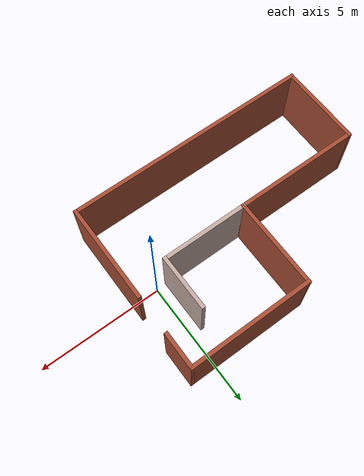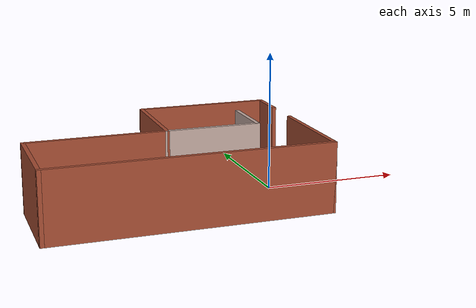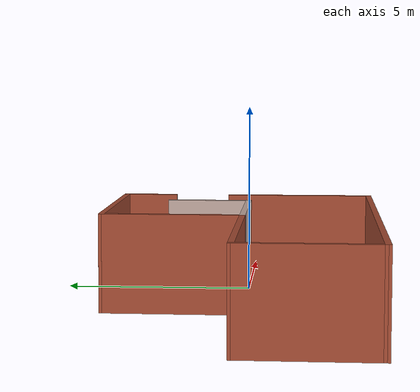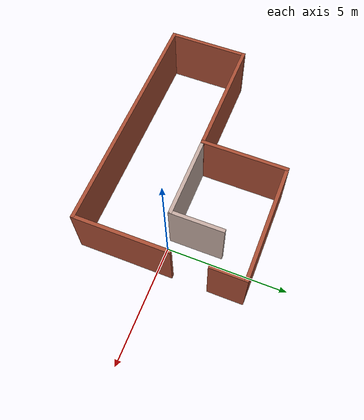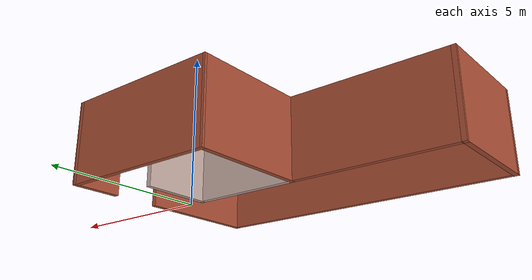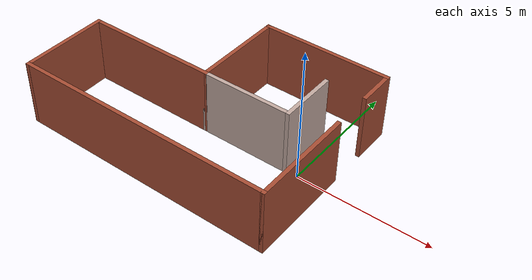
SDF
<?xml version='1.0'?>
<sdf version='1.6'>
  <model name='mybuilding'>
    <pose frame=''>-3.90514 0.1099 0 0 -0 0</pose>
    <link name='Wall_17'>
      <collision name='Wall_17_Collision'>
        <geometry>
          <box>
            <size>5 0.15 2.5</size>
          </box>
        </geometry>
        <pose frame=''>0 0 1.25 0 -0 0</pose>
      </collision>
      <visual name='Wall_17_Visual'>
        <pose frame=''>0 0 1.25 0 -0 0</pose>
        <geometry>
          <box>
            <size>5 0.15 2.5</size>
          </box>
        </geometry>
        <material>
          <script>
            <uri>file://media/materials/scripts/gazebo.material</uri>
            <name>Gazebo/Bricks</name>
          </script>
          <ambient>1 1 1 1</ambient>
        </material>
        <meta>
          <layer>0</layer>
        </meta>
      </visual>
      <pose frame=''>2.50014 3.4001 0 0 -0 0</pose>
    </link>
    <link name='Wall_18'>
      <collision name='Wall_18_Collision'>
        <geometry>
          <box>
            <size>1.5 0.15 2.5</size>
          </box>
        </geometry>
        <pose frame=''>0 0 1.25 0 -0 0</pose>
      </collision>
      <visual name='Wall_18_Visual'>
        <pose frame=''>0 0 1.25 0 -0 0</pose>
        <geometry>
          <box>
            <size>1.5 0.15 2.5</size>
          </box>
        </geometry>
        <material>
          <script>
            <uri>file://media/materials/scripts/gazebo.material</uri>
            <name>Gazebo/Bricks</name>
          </script>
          <ambient>1 1 1 1</ambient>
        </material>
        <meta>
          <layer>0</layer>
        </meta>
      </visual>
      <pose frame=''>4.92514 2.7251 0 0 0 -1.5708</pose>
    </link>
    <link name='Wall_20'>
      <collision name='Wall_20_Collision'>
        <geometry>
          <box>
            <size>3.53042 0.15 2.5</size>
          </box>
        </geometry>
        <pose frame=''>0 0 1.25 0 -0 0</pose>
      </collision>
      <visual name='Wall_20_Visual'>
        <pose frame=''>0 0 1.25 0 -0 0</pose>
        <geometry>
          <box>
            <size>3.53042 0.15 2.5</size>
          </box>
        </geometry>
        <material>
          <script>
            <uri>file://media/materials/scripts/gazebo.material</uri>
            <name>Gazebo/Grey</name>
          </script>
          <ambient>0.760784 0.662745 0.627451 1</ambient>
        </material>
        <meta>
          <layer>0</layer>
        </meta>
      </visual>
      <pose frame=''>1.75065 -0.107588 0 0 -0 0</pose>
    </link>
    <link name='Wall_21'>
      <collision name='Wall_21_Collision'>
        <geometry>
          <box>
            <size>2.25 0.15 2.5</size>
          </box>
        </geometry>
        <pose frame=''>0 0 1.25 0 -0 0</pose>
      </collision>
      <visual name='Wall_21_Visual'>
        <pose frame=''>0 0 1.25 0 -0 0</pose>
        <geometry>
          <box>
            <size>2.25 0.15 2.5</size>
          </box>
        </geometry>
        <material>
          <script>
            <uri>file://media/materials/scripts/gazebo.material</uri>
            <name>Gazebo/Grey</name>
          </script>
          <ambient>0.760784 0.662745 0.627451 1</ambient>
        </material>
        <meta>
          <layer>0</layer>
        </meta>
      </visual>
      <pose frame=''>3.44086 0.942412 0 0 -0 1.5708</pose>
    </link>
    <link name='Wall_23'>
      <collision name='Wall_23_Collision'>
        <geometry>
          <box>
            <size>3.65772 0.15 2.5</size>
          </box>
        </geometry>
        <pose frame=''>0 0 1.25 0 -0 0</pose>
      </collision>
      <visual name='Wall_23_Visual'>
        <pose frame=''>0 0 1.25 0 -0 0</pose>
        <geometry>
          <box>
            <size>3.65772 0.15 2.5</size>
          </box>
        </geometry>
        <material>
          <script>
            <uri>file://media/materials/scripts/gazebo.material</uri>
            <name>Gazebo/Bricks</name>
          </script>
          <ambient>1 1 1 1</ambient>
        </material>
        <meta>
          <layer>0</layer>
        </meta>
      </visual>
      <pose frame=''>0.06779 1.64626 0 0 0 -1.57499</pose>
    </link>
    <link name='Wall_25'>
      <collision name='Wall_25_Collision'>
        <geometry>
          <box>
            <size>3.44282 0.15 2.5</size>
          </box>
        </geometry>
        <pose frame=''>0 0 1.25 0 -0 0</pose>
      </collision>
      <visual name='Wall_25_Visual'>
        <pose frame=''>0 0 1.25 0 -0 0</pose>
        <geometry>
          <box>
            <size>3.44282 0.15 2.5</size>
          </box>
        </geometry>
        <material>
          <script>
            <uri>file://media/materials/scripts/gazebo.material</uri>
            <name>Gazebo/Bricks</name>
          </script>
          <ambient>1 1 1 1</ambient>
        </material>
        <meta>
          <layer>0</layer>
        </meta>
      </visual>
      <pose frame=''>-4.91884 -1.75374 0 0 -0 1.56714</pose>
    </link>
    <link name='Wall_26'>
      <collision name='Wall_26_Collision'>
        <geometry>
          <box>
            <size>5.13847 0.15 2.5</size>
          </box>
        </geometry>
        <pose frame=''>0 0 1.25 0 -0 0</pose>
      </collision>
      <visual name='Wall_26_Visual'>
        <pose frame=''>0 0 1.25 0 -0 0</pose>
        <geometry>
          <box>
            <size>5.13847 0.15 2.5</size>
          </box>
        </geometry>
        <material>
          <script>
            <uri>file://media/materials/scripts/gazebo.material</uri>
            <name>Gazebo/Bricks</name>
          </script>
          <ambient>1 1 1 1</ambient>
        </material>
        <meta>
          <layer>0</layer>
        </meta>
      </visual>
      <pose frame=''>-2.41858 -0.107588 0 0 -0 0</pose>
    </link>
    <link name='Wall_5'>
      <collision name='Wall_5_Collision'>
        <geometry>
          <box>
            <size>10 0.15 2.5</size>
          </box>
        </geometry>
        <pose frame=''>0 0 1.25 0 -0 0</pose>
      </collision>
      <visual name='Wall_5_Visual'>
        <pose frame=''>0 0 1.25 0 -0 0</pose>
        <geometry>
          <box>
            <size>10 0.15 2.5</size>
          </box>
        </geometry>
        <material>
          <script>
            <uri>file://media/materials/scripts/gazebo.material</uri>
            <name>Gazebo/Bricks</name>
          </script>
          <ambient>1 1 1 1</ambient>
        </material>
        <meta>
          <layer>0</layer>
        </meta>
      </visual>
      <pose frame=''>0.000138 -3.3999 0 0 -0 0</pose>
    </link>
    <link name='Wall_6'>
      <collision name='Wall_6_Collision'>
        <geometry>
          <box>
            <size>4 0.15 2.5</size>
          </box>
        </geometry>
        <pose frame=''>0 0 1.25 0 -0 0</pose>
      </collision>
      <visual name='Wall_6_Visual'>
        <pose frame=''>0 0 1.25 0 -0 0</pose>
        <geometry>
          <box>
            <size>4 0.15 2.5</size>
          </box>
        </geometry>
        <material>
          <script>
            <uri>file://media/materials/scripts/gazebo.material</uri>
            <name>Gazebo/Bricks</name>
          </script>
          <ambient>1 1 1 1</ambient>
        </material>
        <meta>
          <layer>0</layer>
        </meta>
      </visual>
      <pose frame=''>4.92514 -1.4749 0 0 -0 1.5708</pose>
    </link>
    <static>1</static>
  </model>
</sdf>
